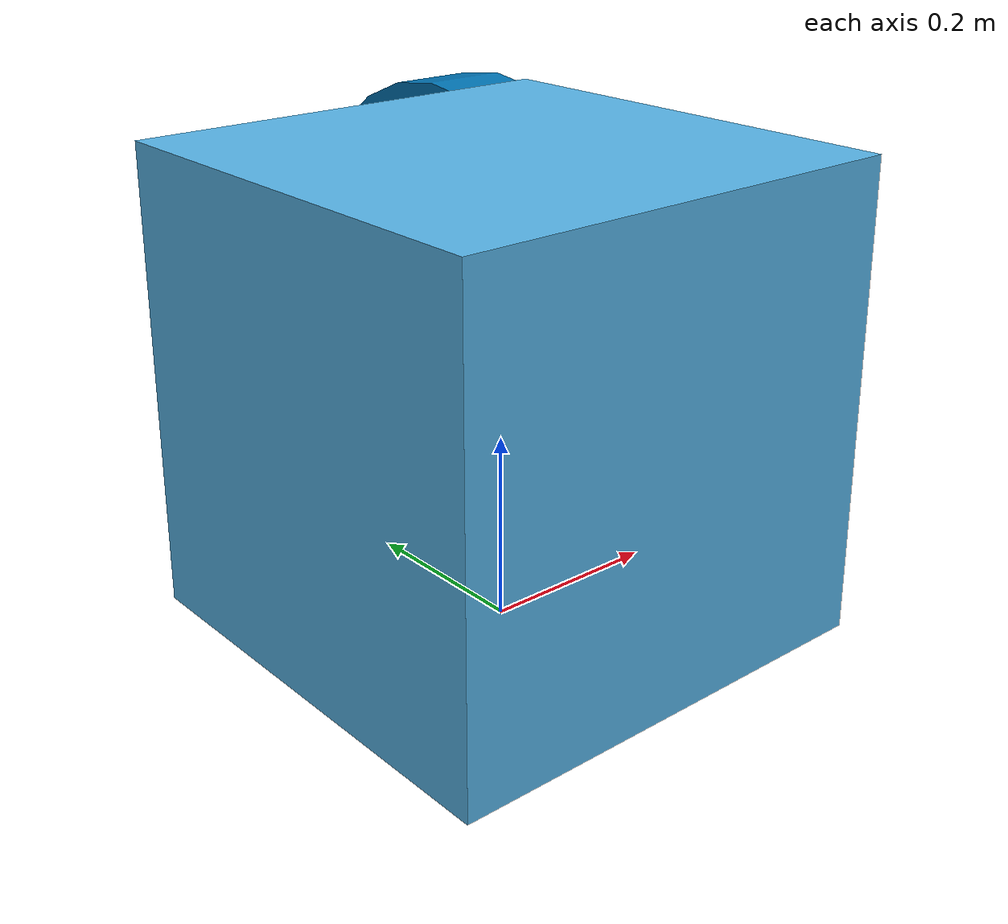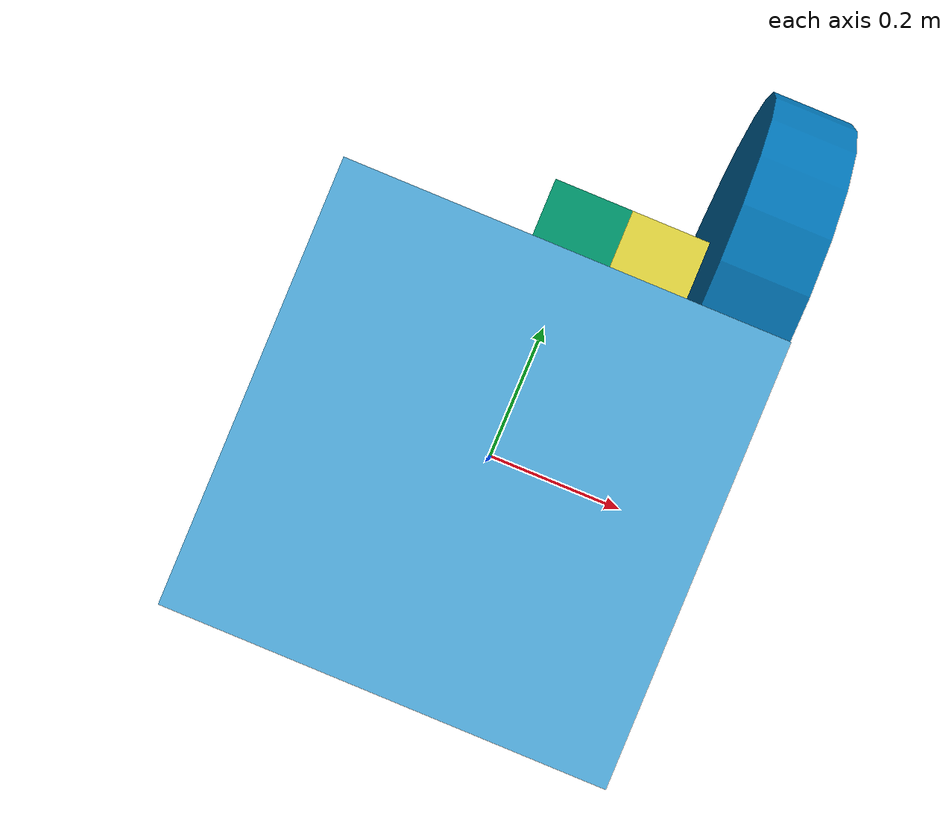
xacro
<?xml version="1.0"?>
<robot name="test_cube" xmlns:xacro="http://www.ros.org/wiki/xacro">

  <xacro:property name="M_PI" value="3.1415926535897931"/>
  <xacro:property name="width" value="0.5" /> <!-- Square dimensions (widthxwidth) of beams -->
  <xacro:property name="height" value="0.5" /> <!-- Link 1 -->
  <xacro:property name="width_2" value="0.1" /> <!-- Square dimensions (widthxwidth) of beams -->
  <xacro:property name="height_2" value="0.5" /> <!-- Link 1 -->
  <xacro:property name="axel_offset" value="0.05" /> <!-- Space btw top of beam and the each joint -->

  <xacro:property name="roll" value="${M_PI/2}" /> <!-- Space btw top of beam and the each joint -->
  <xacro:property name="yaw" value="${M_PI/2}" /> <!-- Space btw top of beam and the each joint -->

  <link name="world"/>

  <joint name="fixed" type="fixed">
    <parent link="world"/>
    <child link="base_link"/>
  </joint>

  <link name="base_link">
    <collision>
      <origin xyz="0 0 ${height/2}" rpy="0 0 0"/>
      <geometry>
        <box size="${width} ${width} ${height}"/>
      </geometry>
    </collision>

    <visual>
      <origin xyz="0 0 ${height/2}" rpy="0 0 0"/>
      <geometry>
        <box size="${width} ${width} ${height}"/>
      </geometry>
    </visual>

    <inertial>
      <origin xyz="0 0 ${height/2}" rpy="0 0 0"/>
      <mass value="1"/>
      <inertia
      ixx="0" ixy="0.0" ixz="0.0"
      iyy="0" iyz="0.0"
      izz="0"/>
    </inertial>
  </link>

  <joint name="joint_x" type="prismatic">
    <parent link="base_link"/>
    <child link="int_link_xy"/>
    <origin xyz="0 ${width/2} ${height/2}" rpy="0 0 0"/>
    <axis xyz="0 1 0"/>
    <limit effort="10" velocity="10" lower="0" upper="3" />
  </joint>

  <link name="int_link_xy">
    <collision>
      <origin xyz="0 0.05 0" rpy="0 0 0"/>
      <geometry>
        <box size="0.1 0.1 0.1"/>
      </geometry>
    </collision>

    <visual>
      <origin xyz="0 0.05 0" rpy="0 0 0"/>
      <geometry>
        <box size="0.1 0.1 0.1"/>
      </geometry>
    </visual>

    <inertial>
      <origin xyz="0 0.05 0" rpy="0 0 0"/>
      <mass value="1"/>
      <inertia
      ixx="1" ixy="0.0" ixz="0.0"
      iyy="1" iyz="0.0"
      izz="1"/>
    </inertial>
  </link>

  <joint name="joint_y" type="prismatic">
    <parent link="int_link_xy"/>
    <child link="int_link_yw"/>
    <origin xyz="0.05 0.05 0" rpy="0 0 0"/>
    <axis xyz="1 0 0"/>
    <limit effort="10" velocity="10" lower="0" upper="3" />
  </joint>

  <link name="int_link_yw">
    <collision>
      <origin xyz="0.05 0 0" rpy="0 0 0"/>
      <geometry>
        <box size="0.1 0.1 0.1"/>
      </geometry>
    </collision>

    <visual>
      <origin xyz="0.05 0 0" rpy="0 0 0"/>
      <geometry>
        <box size="0.1 0.1 0.1"/>
      </geometry>
    </visual>

    <inertial>
      <origin xyz="0.05 0 0" rpy="0 0 0"/>
      <mass value="1"/>
      <inertia
      ixx="1" ixy="0.0" ixz="0.0"
      iyy="1" iyz="0.0"
      izz="1"/>
    </inertial>
  </link>

  <joint name="revolute_w" type="continuous">
    <parent link="int_link_yw"/>
    <child link="wheel"/>
    <origin xyz="0.1 0 0" rpy="0 0 0"/>
    <axis xyz="1 0 0"/>
  </joint>

  <link name="wheel">
    <collision>
      <origin xyz="0.05 0 0" rpy="${roll} 0 ${yaw}"/>
      <geometry>
        <cylinder radius="${height_2/2}" length="${width_2}"/>
      </geometry>
    </collision>

    <visual>
      <origin xyz="0.05 0 0" rpy="${roll} 0 ${yaw}"/>
      <geometry>
        <cylinder radius="${height_2/2}" length="${width_2}"/>
      </geometry>
    </visual>

    <inertial>
      <origin xyz="0.05 0 0" rpy="${roll} 0 ${yaw}"/>
      <mass value="1"/>
      <inertia
      ixx="1" ixy="0.0" ixz="0.0"
      iyy="1" iyz="0.0"
      izz="1"/>
    </inertial>
  </link>

  <gazebo reference="wheel">
    <kp>1000000.0</kp>
    <kd>100.0</kd>
    <mu1>0</mu1>
    <mu2>0</mu2>
    <fdir1>1 0 0</fdir1>
  </gazebo>

  <gazebo>
    <plugin name="robotino_plugin" filename="librobotino_plugin.so"/>
  </gazebo>

</robot>
